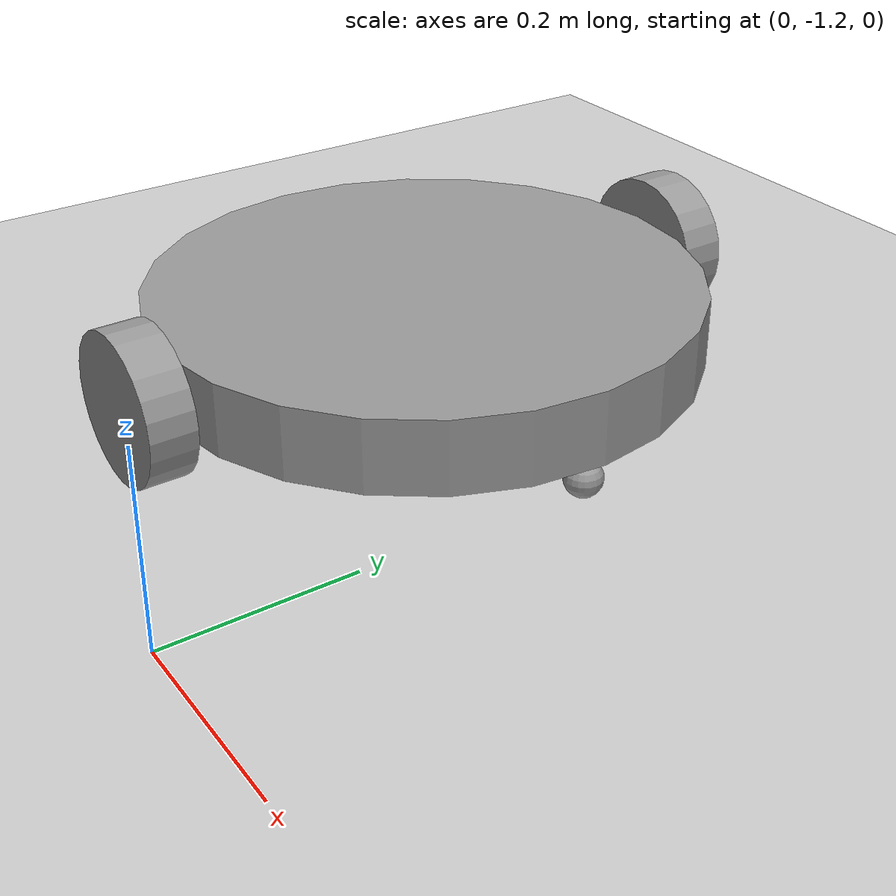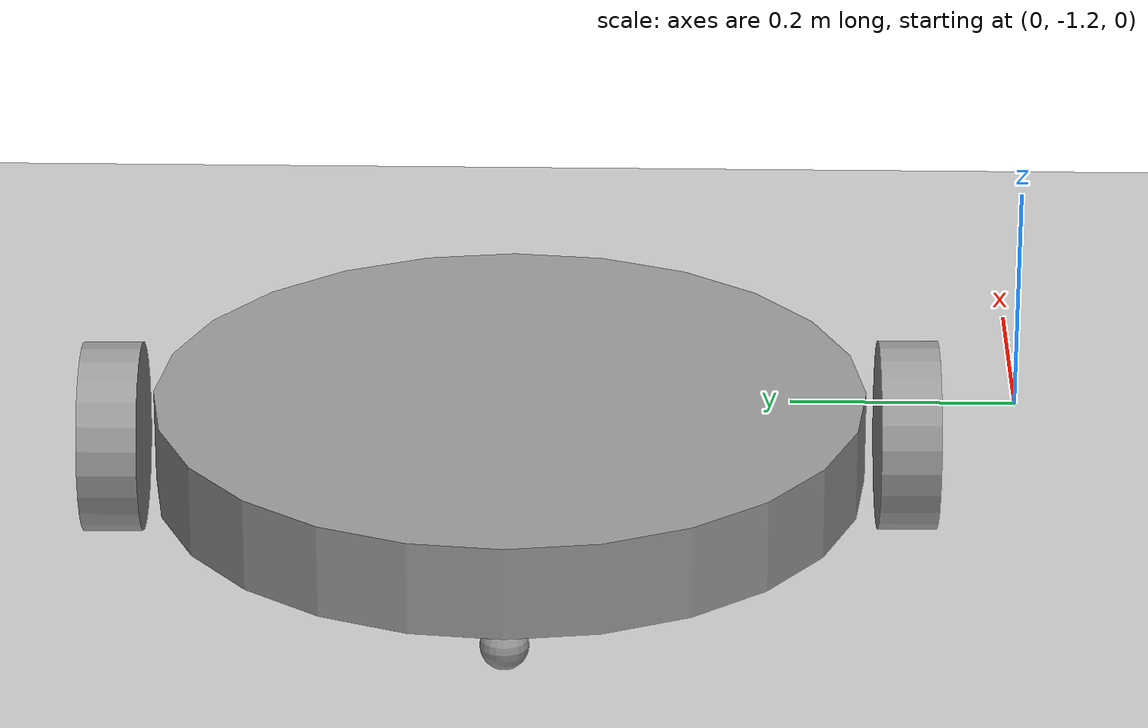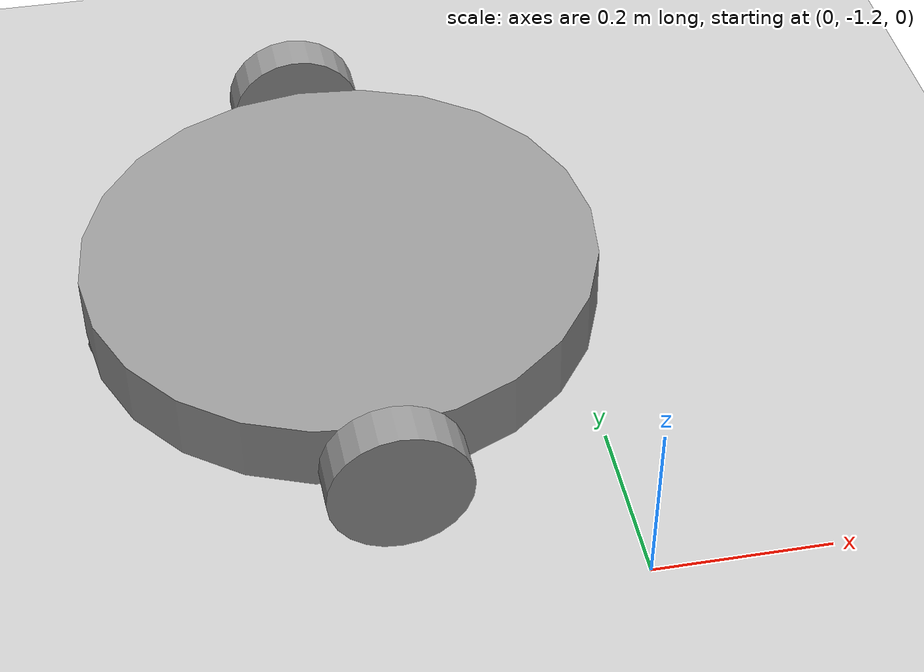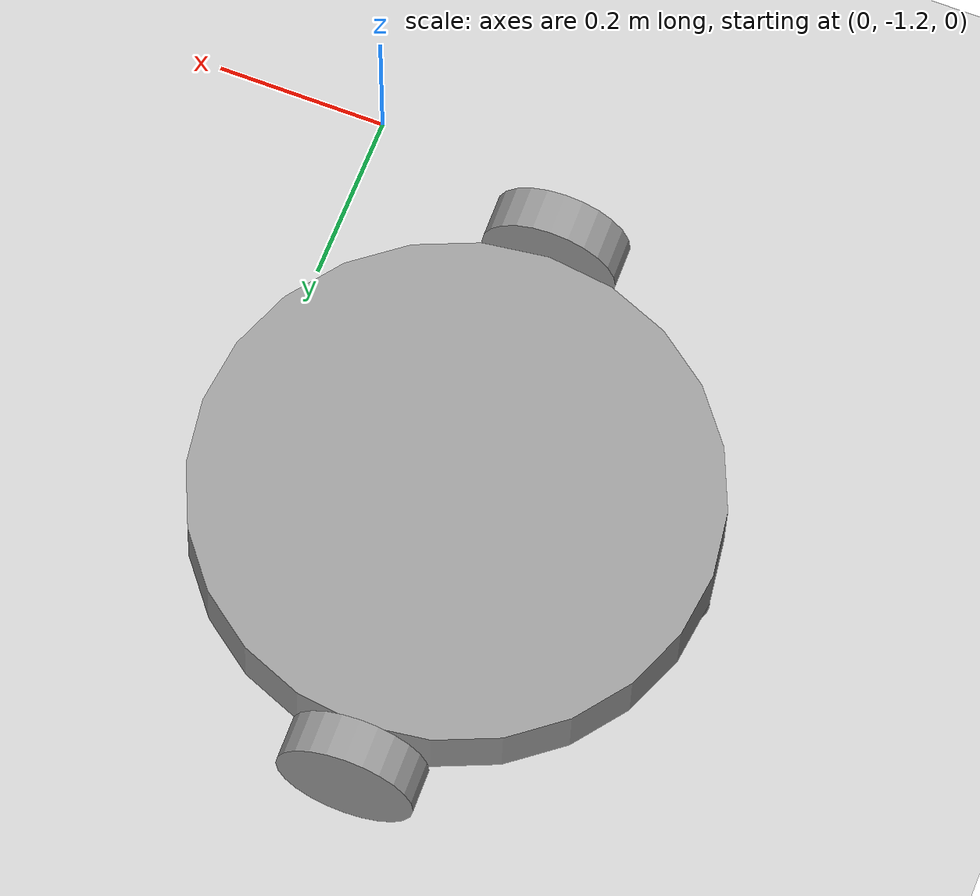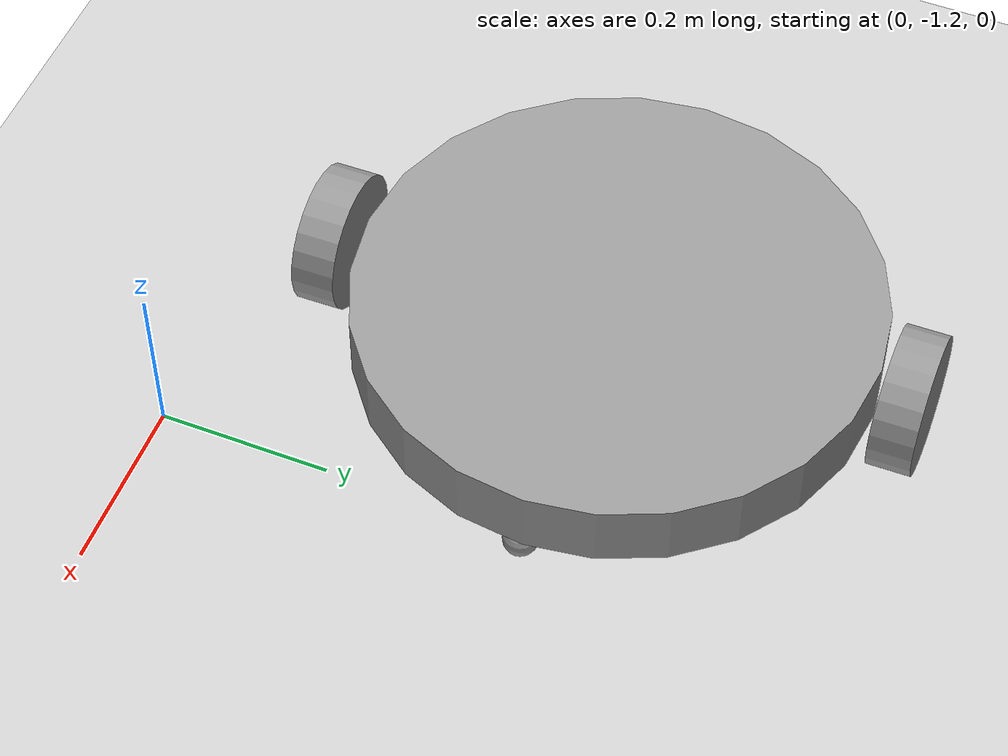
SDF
<sdf version="1.6">
 <world name="default">
  <model name="ground_plane">
   <static>1</static>
   <link name="link">
    <collision name="collision">
     <geometry><plane><normal>0 0 1</normal><size>100 100</size></plane></geometry>
     <surface><friction><ode><mu>100</mu><mu2>50</mu2></ode></friction></surface>
    </collision>
    <visual name="visual">
     <cast_shadows>0</cast_shadows>
     <geometry><plane><normal>0 0 1</normal><size>100 100</size></plane></geometry>
     <material>
      <script><uri>file://media/materials/scripts/gazebo.material</uri><name>Gazebo/Grey</name></script>
     </material>
    </visual>
   </link>
  </model>
  <model name="myrobot_0">
   <link name="link_1">
    <pose>-0.000148 0.002031 0.023 0 -0 0</pose>
    <inertial>
     <mass>1</mass>
     <inertia><ixx>0.145833</ixx><ixy>0</ixy><ixz>0</ixz><iyy>0.145833</iyy><iyz>0</iyz><izz>0.125</izz></inertia>
    </inertial>
    <visual name="visual">
     <geometry><cylinder><radius>0.3</radius><length>0.08</length></cylinder></geometry>
     <material>
      <lighting>1</lighting>
      <script><uri>file://media/materials/scripts/gazebo.material</uri><name>Gazebo/Grey</name></script>
      <shader type="pixel"><normal_map>__default__</normal_map></shader>
      <ambient>0.3 0.3 0.3 1</ambient>
      <diffuse>0.7 0.7 0.7 1</diffuse>
      <specular>0.01 0.01 0.01 1</specular>
      <emissive>0 0 0 1</emissive>
     </material>
    </visual>
    <collision name="collision">
     <geometry><cylinder><radius>0.3</radius><length>0.08</length></cylinder></geometry>
     <surface>
      <friction>
       <ode><mu>1</mu><mu2>1</mu2><fdir1>0 0 0</fdir1><slip1>0</slip1><slip2>0</slip2></ode>
       <torsional>
        <coefficient>1</coefficient>
        <patch_radius>0</patch_radius>
        <surface_radius>0</surface_radius>
        <use_patch_radius>1</use_patch_radius>
        <ode><slip>0</slip></ode>
       </torsional>
      </friction>
      <bounce><restitution_coefficient>0</restitution_coefficient><threshold>1e+06</threshold></bounce>
      <contact>
       <collide_without_contact>0</collide_without_contact>
       <collide_without_contact_bitmask>1</collide_without_contact_bitmask>
       <collide_bitmask>1</collide_bitmask>
       <ode>
        <soft_cfm>0</soft_cfm>
        <soft_erp>0.2</soft_erp>
        <kp>1e+13</kp>
        <kd>1</kd>
        <max_vel>0.01</max_vel>
        <min_depth>0</min_depth>
       </ode>
       <bullet>
        <split_impulse>1</split_impulse>
        <split_impulse_penetration_threshold>-0.01</split_impulse_penetration_threshold>
        <soft_cfm>0</soft_cfm>
        <soft_erp>0.2</soft_erp>
        <kp>1e+13</kp>
        <kd>1</kd>
       </bullet>
      </contact>
     </surface>
    </collision>
   </link>
   <link name="link_2">
    <pose>0.00372 -0.333364 0.023 1.5705 -0 0</pose>
    <inertial>
     <mass>1</mass>
     <inertia><ixx>0.145833</ixx><ixy>0</ixy><ixz>0</ixz><iyy>0.145833</iyy><iyz>0</iyz><izz>0.125</izz></inertia>
    </inertial>
    <visual name="visual">
     <geometry><cylinder><radius>0.08</radius><length>0.05</length></cylinder></geometry>
     <material>
      <lighting>1</lighting>
      <script><uri>file://media/materials/scripts/gazebo.material</uri><name>Gazebo/Grey</name></script>
      <shader type="pixel"><normal_map>__default__</normal_map></shader>
      <ambient>0.3 0.3 0.3 1</ambient>
      <diffuse>0.7 0.7 0.7 1</diffuse>
      <specular>0.01 0.01 0.01 1</specular>
      <emissive>0 0 0 1</emissive>
     </material>
    </visual>
    <collision name="collision">
     <geometry><cylinder><radius>0.08</radius><length>0.05</length></cylinder></geometry>
     <surface>
      <friction>
       <ode><mu>1</mu><mu2>1</mu2><fdir1>0 0 0</fdir1><slip1>0</slip1><slip2>0</slip2></ode>
       <torsional>
        <coefficient>1</coefficient>
        <patch_radius>0</patch_radius>
        <surface_radius>0</surface_radius>
        <use_patch_radius>1</use_patch_radius>
        <ode><slip>0</slip></ode>
       </torsional>
      </friction>
      <bounce><restitution_coefficient>0</restitution_coefficient><threshold>1e+06</threshold></bounce>
      <contact>
       <collide_without_contact>0</collide_without_contact>
       <collide_without_contact_bitmask>1</collide_without_contact_bitmask>
       <collide_bitmask>1</collide_bitmask>
       <ode>
        <soft_cfm>0</soft_cfm>
        <soft_erp>0.2</soft_erp>
        <kp>1e+13</kp>
        <kd>1</kd>
        <max_vel>0.01</max_vel>
        <min_depth>0</min_depth>
       </ode>
       <bullet>
        <split_impulse>1</split_impulse>
        <split_impulse_penetration_threshold>-0.01</split_impulse_penetration_threshold>
        <soft_cfm>0</soft_cfm>
        <soft_erp>0.2</soft_erp>
        <kp>1e+13</kp>
        <kd>1</kd>
       </bullet>
      </contact>
     </surface>
    </collision>
   </link>
   <link name="link_2_clone">
    <pose>-0.003274 0.336298 0.023 1.5705 -0 0</pose>
    <inertial>
     <mass>1</mass>
     <inertia><ixx>0.145833</ixx><ixy>0</ixy><ixz>0</ixz><iyy>0.145833</iyy><iyz>0</iyz><izz>0.125</izz></inertia>
    </inertial>
    <visual name="visual">
     <geometry><cylinder><radius>0.08</radius><length>0.05</length></cylinder></geometry>
     <material>
      <lighting>1</lighting>
      <script><uri>file://media/materials/scripts/gazebo.material</uri><name>Gazebo/Grey</name></script>
      <shader type="pixel"><normal_map>__default__</normal_map></shader>
      <ambient>0.3 0.3 0.3 1</ambient>
      <diffuse>0.7 0.7 0.7 1</diffuse>
      <specular>0.01 0.01 0.01 1</specular>
      <emissive>0 0 0 1</emissive>
     </material>
    </visual>
    <collision name="collision">
     <geometry><cylinder><radius>0.08</radius><length>0.05</length></cylinder></geometry>
     <surface>
      <friction>
       <ode><mu>1</mu><mu2>1</mu2><fdir1>0 0 0</fdir1><slip1>0</slip1><slip2>0</slip2></ode>
       <torsional>
        <coefficient>1</coefficient>
        <patch_radius>0</patch_radius>
        <surface_radius>0</surface_radius>
        <use_patch_radius>1</use_patch_radius>
        <ode><slip>0</slip></ode>
       </torsional>
      </friction>
      <bounce><restitution_coefficient>0</restitution_coefficient><threshold>1e+06</threshold></bounce>
      <contact>
       <collide_without_contact>0</collide_without_contact>
       <collide_without_contact_bitmask>1</collide_without_contact_bitmask>
       <collide_bitmask>1</collide_bitmask>
       <ode>
        <soft_cfm>0</soft_cfm>
        <soft_erp>0.2</soft_erp>
        <kp>1e+13</kp>
        <kd>1</kd>
        <max_vel>0.01</max_vel>
        <min_depth>0</min_depth>
       </ode>
       <bullet>
        <split_impulse>1</split_impulse>
        <split_impulse_penetration_threshold>-0.01</split_impulse_penetration_threshold>
        <soft_cfm>0</soft_cfm>
        <soft_erp>0.2</soft_erp>
        <kp>1e+13</kp>
        <kd>1</kd>
       </bullet>
      </contact>
     </surface>
    </collision>
   </link>
   <link name="link_3">
    <pose>0.279852 -0.006996 -0.037 0 -0 0</pose>
    <inertial>
     <mass>1</mass>
     <inertia><ixx>0.1</ixx><ixy>0</ixy><ixz>0</ixz><iyy>0.1</iyy><iyz>0</iyz><izz>0.1</izz></inertia>
    </inertial>
    <visual name="visual">
     <geometry><sphere><radius>0.02</radius></sphere></geometry>
     <material>
      <lighting>1</lighting>
      <script><uri>file://media/materials/scripts/gazebo.material</uri><name>Gazebo/Grey</name></script>
      <shader type="pixel"><normal_map>__default__</normal_map></shader>
      <ambient>0.3 0.3 0.3 1</ambient>
      <diffuse>0.7 0.7 0.7 1</diffuse>
      <specular>0.01 0.01 0.01 1</specular>
      <emissive>0 0 0 1</emissive>
     </material>
    </visual>
    <collision name="collision">
     <geometry><sphere><radius>0.02</radius></sphere></geometry>
     <surface>
      <friction>
       <ode><mu>1</mu><mu2>1</mu2><fdir1>0 0 0</fdir1><slip1>0</slip1><slip2>0</slip2></ode>
       <torsional>
        <coefficient>1</coefficient>
        <patch_radius>0</patch_radius>
        <surface_radius>0</surface_radius>
        <use_patch_radius>1</use_patch_radius>
        <ode><slip>0</slip></ode>
       </torsional>
      </friction>
      <bounce><restitution_coefficient>0</restitution_coefficient><threshold>1e+06</threshold></bounce>
      <contact>
       <collide_without_contact>0</collide_without_contact>
       <collide_without_contact_bitmask>1</collide_without_contact_bitmask>
       <collide_bitmask>1</collide_bitmask>
       <ode>
        <soft_cfm>0</soft_cfm>
        <soft_erp>0.2</soft_erp>
        <kp>1e+13</kp>
        <kd>1</kd>
        <max_vel>0.01</max_vel>
        <min_depth>0</min_depth>
       </ode>
       <bullet>
        <split_impulse>1</split_impulse>
        <split_impulse_penetration_threshold>-0.01</split_impulse_penetration_threshold>
        <soft_cfm>0</soft_cfm>
        <soft_erp>0.2</soft_erp>
        <kp>1e+13</kp>
        <kd>1</kd>
       </bullet>
      </contact>
     </surface>
    </collision>
   </link>
   <link name="link_3_clone">
    <pose>-0.280148 0.002031 -0.032 0 -0 0</pose>
    <inertial>
     <mass>1</mass>
     <inertia><ixx>0.1</ixx><ixy>0</ixy><ixz>0</ixz><iyy>0.1</iyy><iyz>0</iyz><izz>0.1</izz></inertia>
     <pose>-0.2 0 0.02 0 -0 0</pose>
    </inertial>
    <visual name="visual">
     <geometry><sphere><radius>0.02</radius></sphere></geometry>
     <material>
      <lighting>1</lighting>
      <script><uri>file://media/materials/scripts/gazebo.material</uri><name>Gazebo/Grey</name></script>
      <shader type="pixel"><normal_map>__default__</normal_map></shader>
      <ambient>0.3 0.3 0.3 1</ambient>
      <diffuse>0.7 0.7 0.7 1</diffuse>
      <specular>0.01 0.01 0.01 1</specular>
      <emissive>0 0 0 1</emissive>
     </material>
    </visual>
    <collision name="collision">
     <geometry><sphere><radius>0.02</radius></sphere></geometry>
     <surface>
      <friction>
       <ode><mu>1</mu><mu2>1</mu2><fdir1>0 0 0</fdir1><slip1>0</slip1><slip2>0</slip2></ode>
       <torsional>
        <coefficient>1</coefficient>
        <patch_radius>0</patch_radius>
        <surface_radius>0</surface_radius>
        <use_patch_radius>1</use_patch_radius>
        <ode><slip>0</slip></ode>
       </torsional>
      </friction>
      <bounce><restitution_coefficient>0</restitution_coefficient><threshold>1e+06</threshold></bounce>
      <contact>
       <collide_without_contact>0</collide_without_contact>
       <collide_without_contact_bitmask>1</collide_without_contact_bitmask>
       <collide_bitmask>1</collide_bitmask>
       <ode>
        <soft_cfm>0</soft_cfm>
        <soft_erp>0.2</soft_erp>
        <kp>1e+13</kp>
        <kd>1</kd>
        <max_vel>0.01</max_vel>
        <min_depth>0</min_depth>
       </ode>
       <bullet>
        <split_impulse>1</split_impulse>
        <split_impulse_penetration_threshold>-0.01</split_impulse_penetration_threshold>
        <soft_cfm>0</soft_cfm>
        <soft_erp>0.2</soft_erp>
        <kp>1e+13</kp>
        <kd>1</kd>
       </bullet>
      </contact>
     </surface>
    </collision>
   </link>
   <joint name="link_1_JOINT_1" type="revolute">
    <parent>link_1</parent>
    <child>link_2_clone</child>
    <axis>
     <xyz>0 0 1</xyz>
     <use_parent_model_frame>0</use_parent_model_frame>
     <limit>
      <lower>-1.79769e+308</lower>
      <upper>1.79769e+308</upper>
      <effort>-1</effort>
      <velocity>-1</velocity>
     </limit>
     <dynamics>
      <spring_reference>0</spring_reference>
      <spring_stiffness>0</spring_stiffness>
      <damping>0</damping>
     </dynamics>
    </axis>
    <physics>
     <ode><limit><cfm>0</cfm><erp>0.2</erp></limit><suspension><cfm>0</cfm><erp>0.2</erp></suspension></ode>
    </physics>
   </joint>
   <joint name="link_1_JOINT_3" type="revolute">
    <parent>link_1</parent>
    <child>link_2</child>
    <pose>0 0 0 -0.01 0 0</pose>
    <axis>
     <xyz>0 0 1</xyz>
     <use_parent_model_frame>0</use_parent_model_frame>
     <limit>
      <lower>-1.79769e+308</lower>
      <upper>1.79769e+308</upper>
      <effort>-1</effort>
      <velocity>-1</velocity>
     </limit>
     <dynamics>
      <spring_reference>0</spring_reference>
      <spring_stiffness>0</spring_stiffness>
      <damping>0</damping>
     </dynamics>
    </axis>
    <physics>
     <ode><limit><cfm>0</cfm><erp>0.2</erp></limit><suspension><cfm>0</cfm><erp>0.2</erp></suspension></ode>
    </physics>
   </joint>
   <joint name="link_1_JOINT_4" type="ball">
    <parent>link_1</parent>
    <child>link_3_clone</child>
    <physics>
     <ode><limit><cfm>0</cfm><erp>0.2</erp></limit><suspension><cfm>0</cfm><erp>0.2</erp></suspension></ode>
    </physics>
   </joint>
   <joint name="link_1_JOINT_5" type="revolute">
    <parent>link_1</parent>
    <child>link_3_LINK_FRAME_VISUAL___X_AXIS</child>
    <axis>
     <xyz>1 0 0</xyz>
     <use_parent_model_frame>0</use_parent_model_frame>
     <limit>
      <lower>-1.79769e+308</lower>
      <upper>1.79769e+308</upper>
      <effort>-1</effort>
      <velocity>-1</velocity>
     </limit>
     <dynamics>
      <spring_reference>0</spring_reference>
      <spring_stiffness>0</spring_stiffness>
      <damping>0</damping>
     </dynamics>
    </axis>
    <physics>
     <ode><limit><cfm>0</cfm><erp>0.2</erp></limit><suspension><cfm>0</cfm><erp>0.2</erp></suspension></ode>
    </physics>
   </joint>
   <static>0</static>
   <pose>-0.261868 -0.760108 0.057123 -0.000144 -0.01832 0.017088</pose>
  </model>
 </world>
</sdf>
